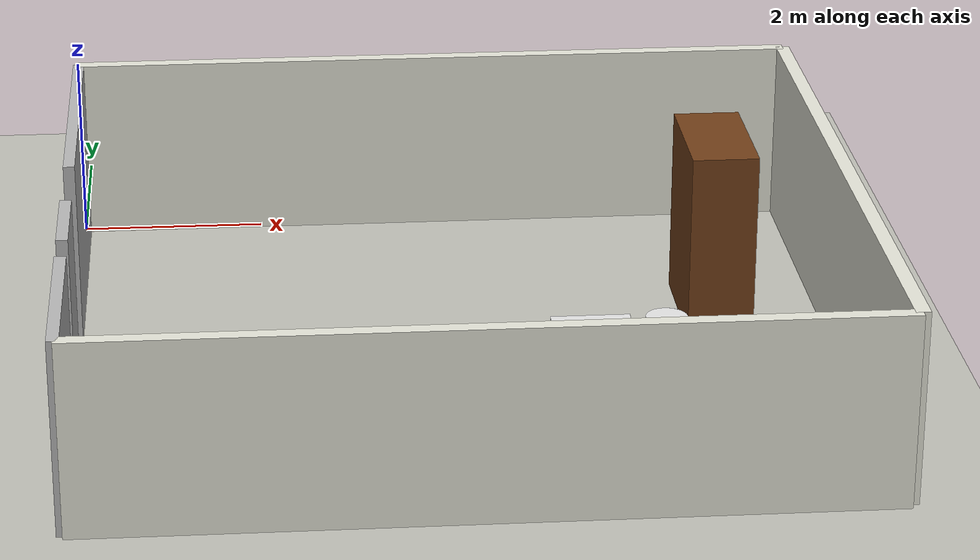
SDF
<?xml version="1.0" ?>
<sdf version="1.8">
  <world name="default">
    <physics name="1ms" type="ignored">
      <max_step_size>0.001</max_step_size>
      <real_time_factor>1.0</real_time_factor>
    </physics>

    <plugin filename="ignition-gazebo-physics-system" name="ignition::gazebo::systems::Physics"/>
    <plugin filename="ignition-gazebo-user-commands-system" name="ignition::gazebo::systems::UserCommands"/>
    <plugin filename="ignition-gazebo-scene-broadcaster-system" name="ignition::gazebo::systems::SceneBroadcaster"/>
    <plugin filename="ignition-gazebo-sensors-system" name="ignition::gazebo::systems::Sensors">
      <render_engine>ogre2</render_engine>
    </plugin>
    <plugin filename="ignition-gazebo-imu-system" name="ignition::gazebo::systems::Imu"/>
    <plugin filename="ignition-gazebo-contact-system" name="ignition::gazebo::systems::Contact"/>

    <light type="directional" name="sun">
      <cast_shadows>true</cast_shadows>
      <pose>0 0 10 0 0 0</pose>
      <diffuse>0.8 0.8 0.8 1</diffuse>
      <specular>0.2 0.2 0.2 1</specular>
      <direction>-0.5 0.1 -0.9</direction>
    </light>

    <model name="ground_plane">
      <static>true</static>
      <pose>0 -3.75 0 0 0 0</pose>
      <link name="link">
        <collision name="collision">
          <geometry><plane><normal>0 0 1</normal><size>16 8</size></plane></geometry>
        </collision>
        <visual name="visual">
          <geometry><plane><normal>0 0 1</normal><size>16 8</size></plane></geometry>
          <material>
            <ambient>0.75 0.75 0.72 1</ambient>
            <diffuse>0.75 0.75 0.72 1</diffuse>
          </material>
        </visual>
      </link>
    </model>

    <!-- Outer walls: south half only, sealed off where the rest of the apartment used to be -->
    <model name="wall_south"><static>true</static><pose>4 -7.5 1 0 0 0</pose><link name="link"><collision name="collision"><geometry><box><size>8 0.15 2</size></box></geometry></collision><visual name="visual"><geometry><box><size>8 0.15 2</size></box></geometry><material><ambient>0.9 0.9 0.85 1</ambient><diffuse>0.9 0.9 0.85 1</diffuse></material></visual></link></model>
    <model name="wall_east"><static>true</static><pose>8 -3.75 1 0 0 0</pose><link name="link"><collision name="collision"><geometry><box><size>0.15 7.5 2</size></box></geometry></collision><visual name="visual"><geometry><box><size>0.15 7.5 2</size></box></geometry><material><ambient>0.9 0.9 0.85 1</ambient><diffuse>0.9 0.9 0.85 1</diffuse></material></visual></link></model>
    <model name="wall_center"><static>true</static><pose>4 0 1 0 0 0</pose><link name="link"><collision name="collision"><geometry><box><size>8 0.15 2</size></box></geometry></collision><visual name="visual"><geometry><box><size>8 0.15 2</size></box></geometry><material><ambient>0.9 0.9 0.85 1</ambient><diffuse>0.9 0.9 0.85 1</diffuse></material></visual></link></model>

    <!-- Inner wall dividing the two retained rooms: one 915mm door + one 400mm gap -->
    <model name="inner_wall_south_center"><static>true</static><pose>0 -1.5890625 1 0 0 0</pose><link name="link"><collision name="collision"><geometry><box><size>0.12 3.178125 2</size></box></geometry></collision><visual name="visual"><geometry><box><size>0.12 3.178125 2</size></box></geometry></visual></link></model>
    <model name="inner_wall_south_outer_top"><static>true</static><pose>0 -4.620625 1 0 0 0</pose><link name="link"><collision name="collision"><geometry><box><size>0.12 1.055 2</size></box></geometry></collision><visual name="visual"><geometry><box><size>0.12 1.055 2</size></box></geometry></visual></link></model>
    <model name="inner_wall_south_outer_bottom"><static>true</static><pose>0 -6.5365625 1 0 0 0</pose><link name="link"><collision name="collision"><geometry><box><size>0.12 1.976875 2</size></box></geometry></collision><visual name="visual"><geometry><box><size>0.12 1.976875 2</size></box></geometry></visual></link></model>

    <!-- Furniture simplified as boxes -->
    <model name="bookshelf"><static>true</static><pose>6.8 -2.8 1.0 0 0 0</pose><link name="link"><collision name="collision"><geometry><box><size>0.7 1.4 2.0</size></box></geometry></collision><visual name="visual"><geometry><box><size>0.7 1.4 2.0</size></box></geometry><material><ambient>0.45 0.25 0.1 1</ambient><diffuse>0.45 0.25 0.1 1</diffuse></material></visual></link></model>
    <model name="washing_machine"><static>true</static><pose>5.2 -5.5 0.5 0 0 0</pose><link name="link"><collision name="collision"><geometry><box><size>0.8 0.8 1.0</size></box></geometry></collision><visual name="visual"><geometry><box><size>0.8 0.8 1.0</size></box></geometry><material><ambient>0.9 0.9 0.9 1</ambient><diffuse>0.9 0.9 0.9 1</diffuse></material></visual></link></model>
    <model name="trash_bin"><static>true</static><pose>6.8 -5.5 0.35 0 0 0</pose><link name="link"><collision name="collision"><geometry><cylinder><radius>0.25</radius><length>0.7</length></cylinder></geometry></collision><visual name="visual"><geometry><cylinder><radius>0.25</radius><length>0.7</length></cylinder></geometry><material><ambient>0.1 0.1 0.1 1</ambient><diffuse>0.1 0.1 0.1 1</diffuse></material></visual></link></model>
    <model name="laundry_basket"><static>true</static><pose>6.1 -4.3 0.3 0 0 0</pose><link name="link"><collision name="collision"><geometry><cylinder><radius>0.22</radius><length>0.6</length></cylinder></geometry></collision><visual name="visual"><geometry><cylinder><radius>0.22</radius><length>0.6</length></cylinder></geometry><material><ambient>0.9 0.9 0.9 1</ambient><diffuse>0.9 0.9 0.9 1</diffuse></material></visual></link></model>

  </world>
</sdf>
